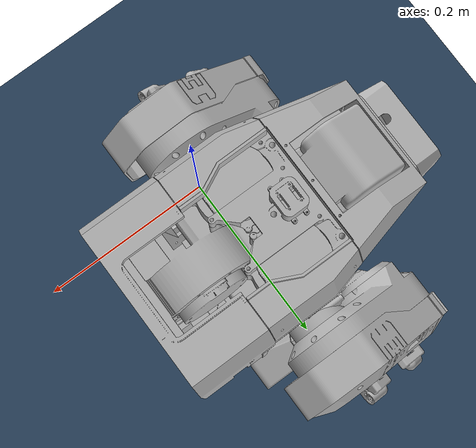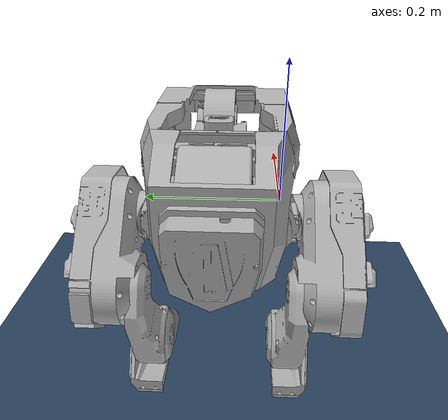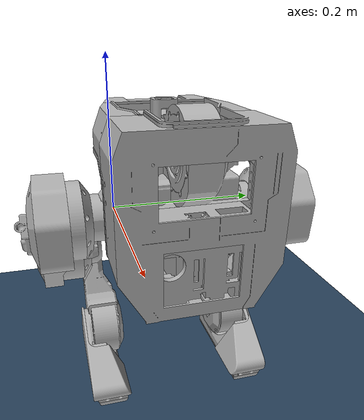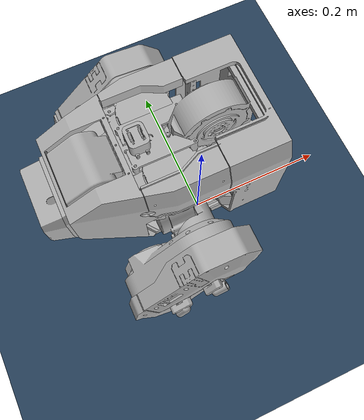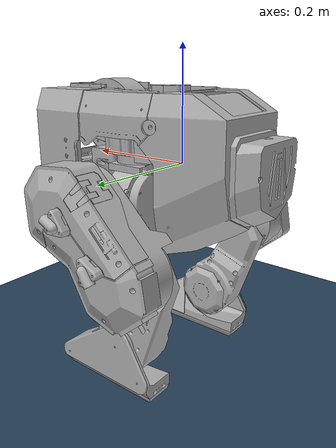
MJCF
<mujoco model="BDX-R">
  <compiler angle="radian" meshdir="meshes"/>

  <default>
    <default class="visual">
      <geom group="2"
            type="mesh"
            density="0"
            material="silver"
            contype="0"
            conaffinity="0"/>
    </default>
    <default class="collision">
      <geom group="3"
            contype="1"
            conaffinity="1"
            material="bright_orange_transparent"/>
    </default>
  </default>

  <asset>
    <material name="bright_orange_transparent" rgba="1 0.5 0 0.3"/>
    <material name="silver" rgba="0.7 0.7 0.7 1"/>
    <!-- TODO: Merge fixed meshes together -->
    <!-- TODO: Scale the meshes from start -->
    <!-- TODO: Reuse meshes that can be flipped (we shall have 4 meshes at most withouth the head) -->
    <!-- TODO: Use sites for imu/others sensors -->
    <mesh file="base_link.stl" scale="0.001 0.001 0.001"/>
    <mesh file="Right_Hip_Yaw_Motor.stl" scale="0.001 0.001 0.001"/>
    <mesh file="Left_Hip_Yaw_Motor.stl" scale="0.001 0.001 0.001"/>
    <mesh file="BottomCover.stl" scale="0.001 0.001 0.001"/>
    <mesh file="BackFrame.stl" scale="0.001 0.001 0.001"/>
    <mesh file="BackCover.stl" scale="0.001 0.001 0.001"/>
    <mesh file="FrontCover.stl" scale="0.001 0.001 0.001"/>
    <mesh file="TopLeftCover.stl" scale="0.001 0.001 0.001"/>
    <mesh file="TopRightCover.stl" scale="0.001 0.001 0.001"/>
    <mesh file="IMU_Mount.stl" scale="0.001 0.001 0.001"/>
    <mesh file="Jetson_Mount.stl" scale="0.001 0.001 0.001"/>
    <mesh file="Neck_Motor.stl" scale="0.001 0.001 0.001"/>
    <mesh file="Battery.stl" scale="0.001 0.001 0.001"/>
    <mesh file="Antenna.stl" scale="0.001 0.001 0.001"/>
    <mesh file="AntennaBox.stl" scale="0.001 0.001 0.001"/>
    <mesh file="Right_Hip_Roll_Motor.stl" scale="0.001 0.001 0.001"/>
    <mesh file="Left_Hip_Roll_Motor.stl" scale="0.001 0.001 0.001"/>
    <mesh file="Right_Hip_Connector.stl" scale="0.001 0.001 0.001"/>
    <mesh file="Left_Hip_Connector.stl" scale="0.001 0.001 0.001"/>
    <mesh file="Right_Upper_Leg.stl" scale="0.001 0.001 0.001"/>
    <mesh file="Right_Hip_Pitch_Motor.stl" scale="0.001 0.001 0.001"/>
    <mesh file="Right_Knee_Motor.stl" scale="0.001 0.001 0.001"/>
    <mesh file="Right_Lower_Leg.stl" scale="0.001 0.001 0.001"/>
    <mesh file="Right_Ankle_Motor.stl" scale="0.001 0.001 0.001"/>
    <mesh file="RightAnkleCover.stl" scale="0.001 0.001 0.001"/>
    <mesh file="Right_Foot.stl" scale="0.001 0.001 0.001"/>
    <mesh file="RightFootPad.stl" scale="0.001 0.001 0.001"/>
    <mesh file="RightFootCover.stl" scale="0.001 0.001 0.001"/>
    <mesh file="RightBottomLegCover.stl" scale="0.001 0.001 0.001"/>
    <mesh file="RightUpperLegCover.stl" scale="0.001 0.001 0.001"/>
    <mesh file="RightLegUpperPlug.stl" scale="0.001 0.001 0.001"/>
    <mesh file="RightLegBottomPlug.stl" scale="0.001 0.001 0.001"/>
    <mesh file="Left_Hip_Pitch_Motor.stl" scale="0.001 0.001 0.001"/>
    <mesh file="Left_Upper_Leg.stl" scale="0.001 0.001 0.001"/>
    <mesh file="Left_Knee_Motor.stl" scale="0.001 0.001 0.001"/>
    <mesh file="Left_Lower_Leg.stl" scale="0.001 0.001 0.001"/>
    <mesh file="Left_Ankle_Motor.stl" scale="0.001 0.001 0.001"/>
    <mesh file="Left_Foot.stl" scale="0.001 0.001 0.001"/>
    <mesh file="LeftFootPad.stl" scale="0.001 0.001 0.001"/>
    <mesh file="LeftFootCover.stl" scale="0.001 0.001 0.001"/>
    <mesh file="LeftAnkleCover.stl" scale="0.001 0.001 0.001"/>
    <mesh file="LeftBottomLegCover.stl" scale="0.001 0.001 0.001"/>
    <mesh file="LeftUpperLegCover.stl" scale="0.001 0.001 0.001"/>
    <mesh file="LeftLegBottomPlug.stl" scale="0.001 0.001 0.001"/>
    <mesh file="LeftLegUpperPlug.stl" scale="0.001 0.001 0.001"/>
  </asset>

  <worldbody>
  <body name="base_link" pos="0.0 0.0 0.0">
    <joint type="free" name="free_joint"/>
    <geom class="visual" mesh="base_link"/>
    <geom class="visual" mesh="Right_Hip_Yaw_Motor"/>
    <geom class="visual" mesh="Left_Hip_Yaw_Motor"/>
    <geom class="visual" mesh="BottomCover"/>
    <geom class="collision" name="base_link_collision" type="capsule" fromto="0.1 0.0875 0.015   -0.1 0.0875 0.015" size="0.12" />
    <geom class="visual" mesh="BackFrame"/>
    <geom class="visual" mesh="BackCover"/>
    <geom class="visual" mesh="Antenna"/>
    <geom class="visual" mesh="AntennaBox"/>
    <geom class="visual" mesh="FrontCover"/>
    <geom class="visual" mesh="TopLeftCover"/>
    <geom class="visual" mesh="TopRightCover"/>
    <geom class="visual" mesh="IMU_Mount"/>
    <geom class="visual" mesh="Jetson_Mount"/>
    <geom class="visual" mesh="Neck_Motor"/>
    <geom class="visual" mesh="Battery"/>
    <body name="Right_Hip_Roll_Motor" pos="-0.025798 0.037202 0.043944">
      <inertial pos="-0.00306484 -0.00779299 -0.0589804" quat="0.999289 -0.0216466 0.00612604 -0.0302708" mass="1.07135" diaginertia="0.002347 0.00214453 0.000904467"/>
      <joint name="Right_Hip_Yaw" axis="0 0 1" range="-0.5 0.35" actuatorfrcrange="-42 42"/>
      <geom pos="0.025798 -0.037202 -0.043944" class="visual" mesh="Right_Hip_Roll_Motor"/>
      <body name="Right_Hip_Connector" pos="0.018 -0.0125 -0.064284">
        <inertial pos="0.00209646 -0.034662 0.00127164" quat="0.701917 0.696723 -0.0981694 -0.110696" mass="0.155347" diaginertia="0.000184778 0.000167005 7.02171e-05"/>
        <joint name="Right_Hip_Roll" axis="-1 0 0" range="-0.3 0.3" actuatorfrcrange="-42 42"/>
        <geom pos="0.007798 -0.024702 0.02034" class="visual" mesh="Right_Hip_Connector"/>
        <body name="Right_Hip_Pitch_Motor" pos="-0.008647 -0.07125 0.001341">
          <inertial pos="-0.040231 -0.0321881 -0.0241217" quat="0.454521 0.437966 0.529183 0.567065" mass="2.54514" diaginertia="0.0169616 0.014935 0.00789867"/>
          <joint name="Right_Hip_Pitch" axis="0 -1 0" range="-1 0.5" actuatorfrcrange="-42 42"/>
          <geom pos="0.016445 0.046548 0.018999" class="visual" mesh="Right_Hip_Pitch_Motor"/>
          <geom pos="0.016445 0.046548 0.018999" class="visual" mesh="Right_Upper_Leg"/>
          <geom pos="0.016445 0.046548 0.018999" class="visual" mesh="Right_Knee_Motor"/>
          <geom pos="0.016445 0.046548 0.018999" class="visual" mesh="RightBottomLegCover"/>
          <geom pos="0.016445 0.046548 0.018999" class="visual" mesh="RightLegBottomPlug"/>
          <geom pos="0.016445 0.046548 0.018999" class="visual" mesh="RightUpperLegCover"/>
          <geom pos="0.016445 0.046548 0.018999" class="visual" mesh="RightLegUpperPlug"/>
          <body name="Right_Lower_Leg" pos="-0.079193 0 -0.077823">
            <inertial pos="0.0439964 0.0310957 -0.0887868" quat="0.215223 0.66964 0.634892 0.319646" mass="0.785759" diaginertia="0.00376583 0.00297417 0.00118644"/>
            <joint name="Right_Knee" axis="0 -1 0" range="-1.2 0.95" actuatorfrcrange="-42 42"/>
            <geom pos="0.095638 0.046548 0.096822" class="visual" mesh="Right_Lower_Leg"/>
            <geom pos="0.095638 0.046548 0.096822" class="visual" mesh="Right_Ankle_Motor"/>
            <geom pos="0.095638 0.046548 0.096822" class="visual" mesh="RightAnkleCover"/>
            <body name="Right_Foot" pos="0.045364 0.00534 -0.12999">
              <inertial pos="0.0145127 -0.000397488 -0.0274648" quat="0.317451 0.603212 0.496644 0.537313" mass="0.292365" diaginertia="0.00234065 0.00201227 0.000701132"/>
              <joint name="Right_Ankle" axis="0 -1 0" range="-1.3 0.85" actuatorfrcrange="-11.9 11.9"/>
              <geom pos="0.050274 0.041208 0.226812" class="visual" mesh="Right_Foot"/>
              <geom pos="0.050274 0.041208 0.226812" class="visual" mesh="RightFootPad"/>
              <geom pos="0.050274 0.041208 0.226812" class="visual" mesh="RightFootCover"/>
              <geom pos="0.050274 0.041208 0.226812" type="mesh" class="collision" name="right_foot_collision" mesh="RightFootPad"/>
            </body>
          </body>
        </body>
      </body>
    </body>
    <body name="Left_Hip_Roll_Motor" pos="-0.025798 0.137202 0.043944">
      <inertial pos="-0.00306484 0.00779333 -0.0589804" quat="0.999289 0.0216466 0.00612604 0.0302708" mass="1.07135" diaginertia="0.002347 0.00214453 0.000904467"/>
      <joint name="Left_Hip_Yaw" axis="0 0 1" range="-0.5 0.35" actuatorfrcrange="-42 42"/>
      <geom pos="0.025798 -0.137202 -0.043944" class="visual" mesh="Left_Hip_Roll_Motor"/>
      <body name="Left_Hip_Connector" pos="0.018 0.0125 -0.064284">
        <inertial pos="0.00209646 0.0346624 0.00127164" quat="0.696723 0.701917 0.110696 0.0981694" mass="0.155347" diaginertia="0.000184778 0.000167005 7.02171e-05"/>
        <joint name="Left_Hip_Roll" axis="1 0 0" range="-0.3 0.3" actuatorfrcrange="-42 42"/>
        <geom pos="0.007798 -0.149702 0.02034" class="visual" mesh="Left_Hip_Connector"/>
        <body name="Left_Hip_Pitch_Motor" pos="-0.008647 0.07125 0.001341">
          <inertial pos="-0.0174647 -0.0251193 -0.00876211" quat="0.00455484 0.5422 0.433489 0.719782" mass="2.54514" diaginertia="0.0154414 0.0138946 0.00916379"/>
          <joint name="Left_Hip_Pitch" axis="0 -1 0" range="-0.5 1" actuatorfrcrange="-42 42"/>
          <geom pos="0.016445 -0.220952 0.018999" class="visual" mesh="Left_Hip_Pitch_Motor"/>
          <geom pos="0.016445 -0.220952 0.018999" class="visual" mesh="Left_Upper_Leg"/>
          <geom pos="0.016445 -0.220952 0.018999" class="visual" mesh="Left_Knee_Motor"/>
          <geom pos="0.016445 -0.220952 0.018999" class="visual" mesh="LeftBottomLegCover"/>
          <geom pos="0.016445 -0.220952 0.018999" class="visual" mesh="LeftLegBottomPlug"/>
          <geom pos="0.016445 -0.220952 0.018999" class="visual" mesh="LeftUpperLegCover"/>
          <geom pos="0.016445 -0.220952 0.018999" class="visual" mesh="LeftLegUpperPlug"/>
          <body name="Left_Lower_Leg" pos="-0.079193 -0.0003 -0.077823">
            <inertial pos="0.0395886 0.00207009 -0.0835681" quat="0.417019 -0.21659 -0.277101 0.838092" mass="0.775759" diaginertia="0.00317379 0.00265199 0.001083"/>
            <joint name="Left_Knee" axis="0 -1 0" range="-0.95 1.2" actuatorfrcrange="-42 42"/>
            <geom pos="0.095638 -0.220652 0.096822" class="visual" mesh="Left_Lower_Leg"/>
            <geom pos="0.095638 -0.220652 0.096822" class="visual" mesh="Left_Ankle_Motor"/>
            <geom pos="0.095638 -0.220652 0.096822" class="visual" mesh="LeftAnkleCover"/>
            <body name="Left_Foot" pos="0.045372 -0.00534 -0.130013">
              <inertial pos="0.0121904 -0.00380556 -0.0293989" quat="0.417786 0.661957 0.417729 0.461271" mass="0.282365" diaginertia="0.00227004 0.00207882 0.000724381"/>
              <joint name="Left_Ankle" axis="0 -1 0" range="-0.85 1.3" actuatorfrcrange="-11.9 11.9"/>
              <geom pos="0.050266 -0.215312 0.226835" class="visual" mesh="Left_Foot"/>
              <geom pos="0.050266 -0.215312 0.226835" class="visual" mesh="LeftFootPad"/>
              <geom pos="0.050266 -0.215312 0.226835" class="visual" mesh="LeftFootCover"/>
              <geom pos="0.050266 -0.215312 0.226835" type="mesh" class="collision" name="left_foot_collision" mesh="LeftFootPad"/>
            </body>
          </body>
        </body>
      </body>
    </body>
  </body>
  </worldbody>

  <visual>
      <headlight diffuse="0.6 0.6 0.6" ambient="0.3 0.3 0.3" specular="0 0 0"/>
      <rgba haze="0.15 0.25 0.35 1"/>
      <global azimuth="120" elevation="-20"/>
  </visual>

  <asset>
      <texture type="skybox" builtin="gradient" rgb1="0.3 0.5 0.7" rgb2="0 0 0" width="512" height="3072"/>
      <texture type="2d" name="groundplane" builtin="checker" mark="edge" rgb1="0.2 0.3 0.4" rgb2="0.1 0.2 0.3"
                markrgb="0.8 0.8 0.8" width="300" height="300"/>
      <material name="groundplane" texture="groundplane" texuniform="true" texrepeat="5 5" reflectance="0.2"/>
  </asset>

  <worldbody>
      <light pos="0 0 1.5" dir="0 0 -1" directional="true"/>
      <geom name="floor" pos="0 0 -0.30846" size="0 0 0.01" type="plane" material="groundplane" conaffinity="1"/>
  </worldbody>
</mujoco>
